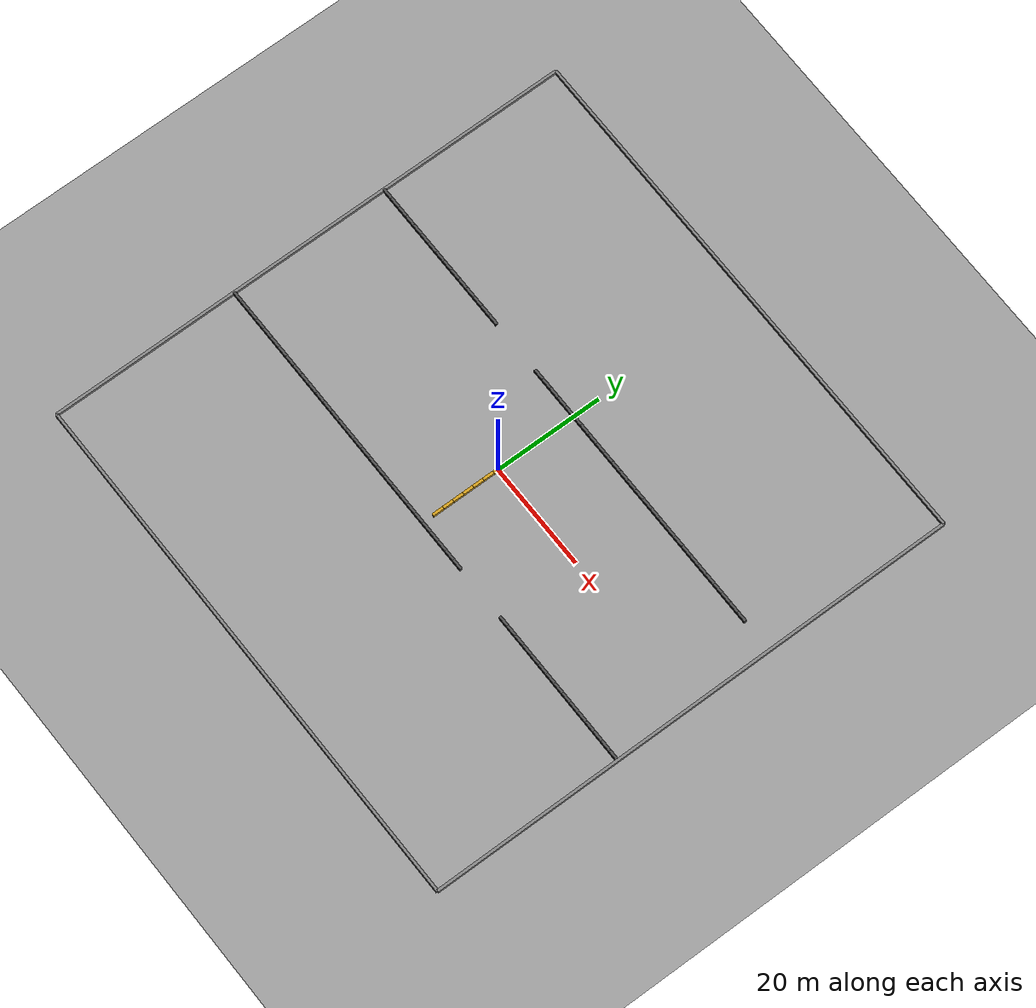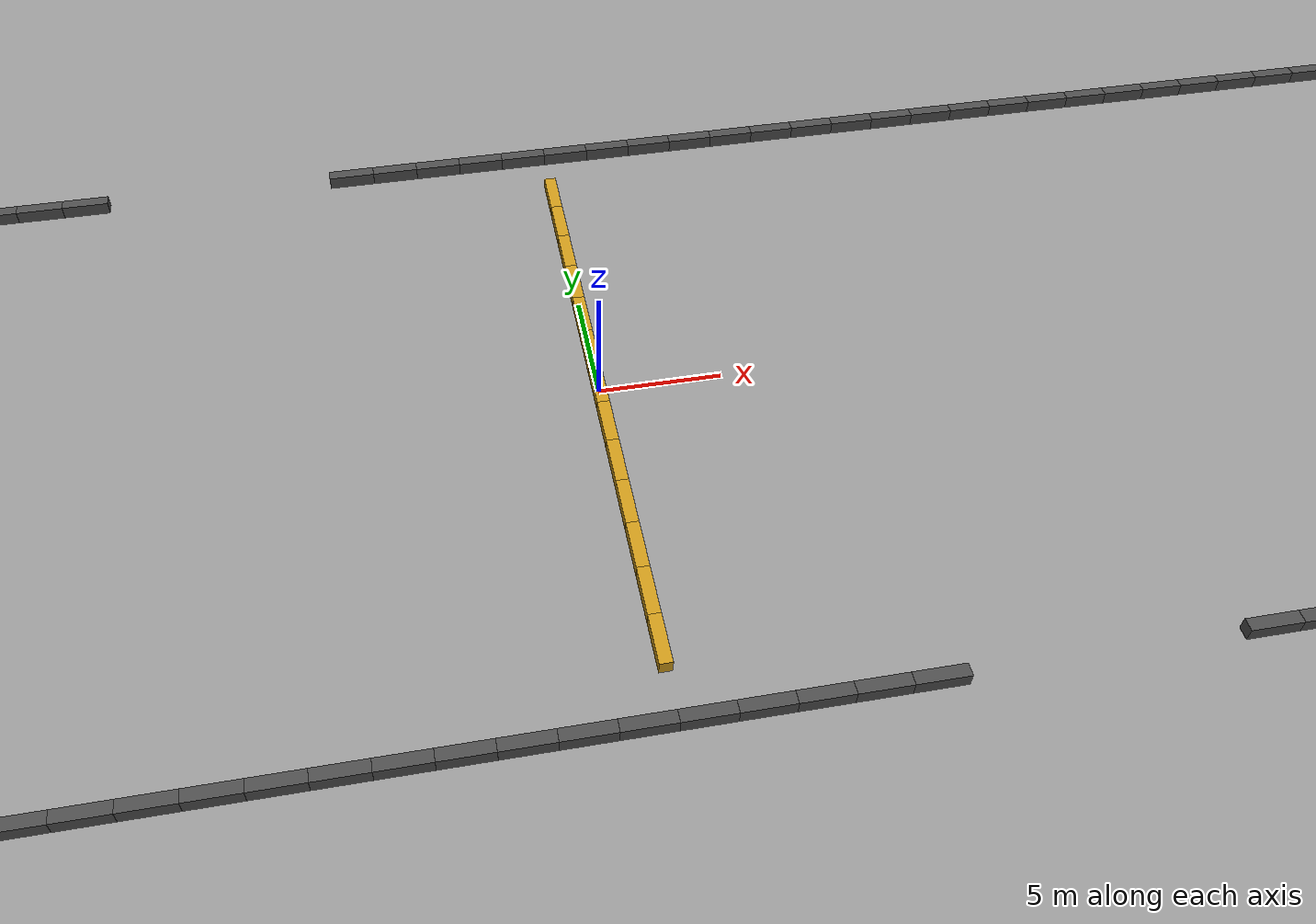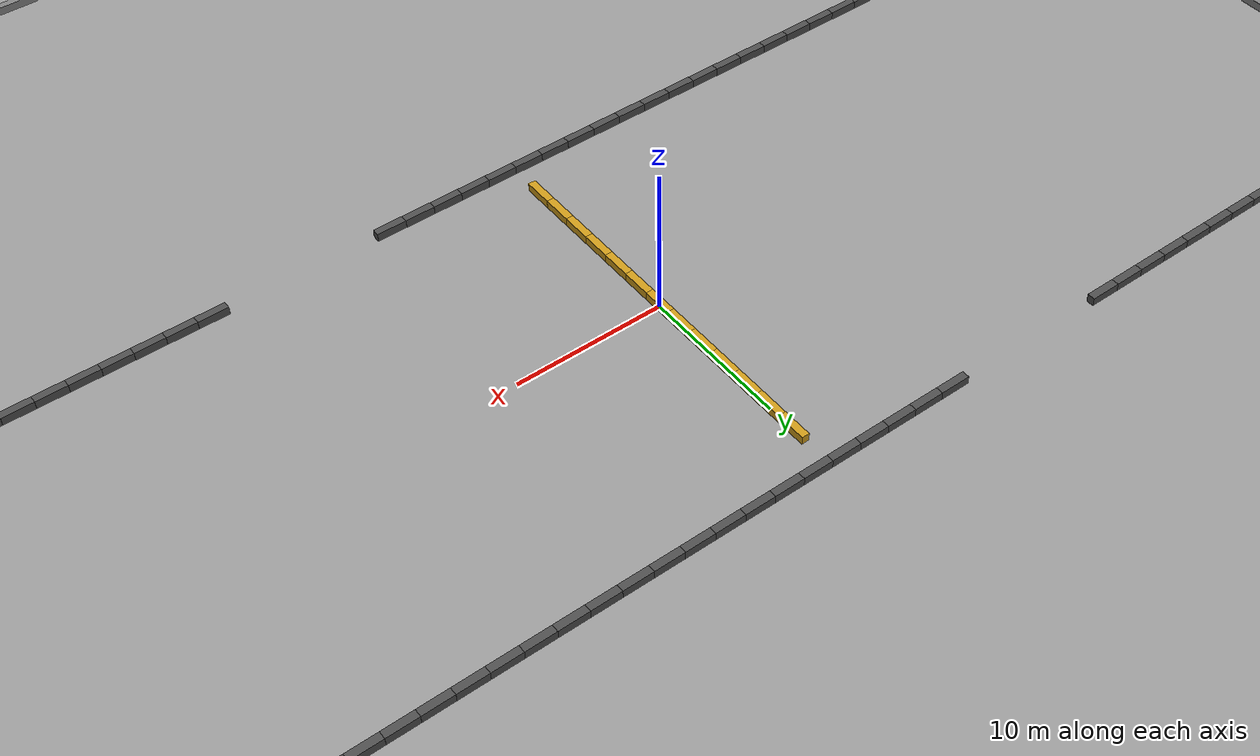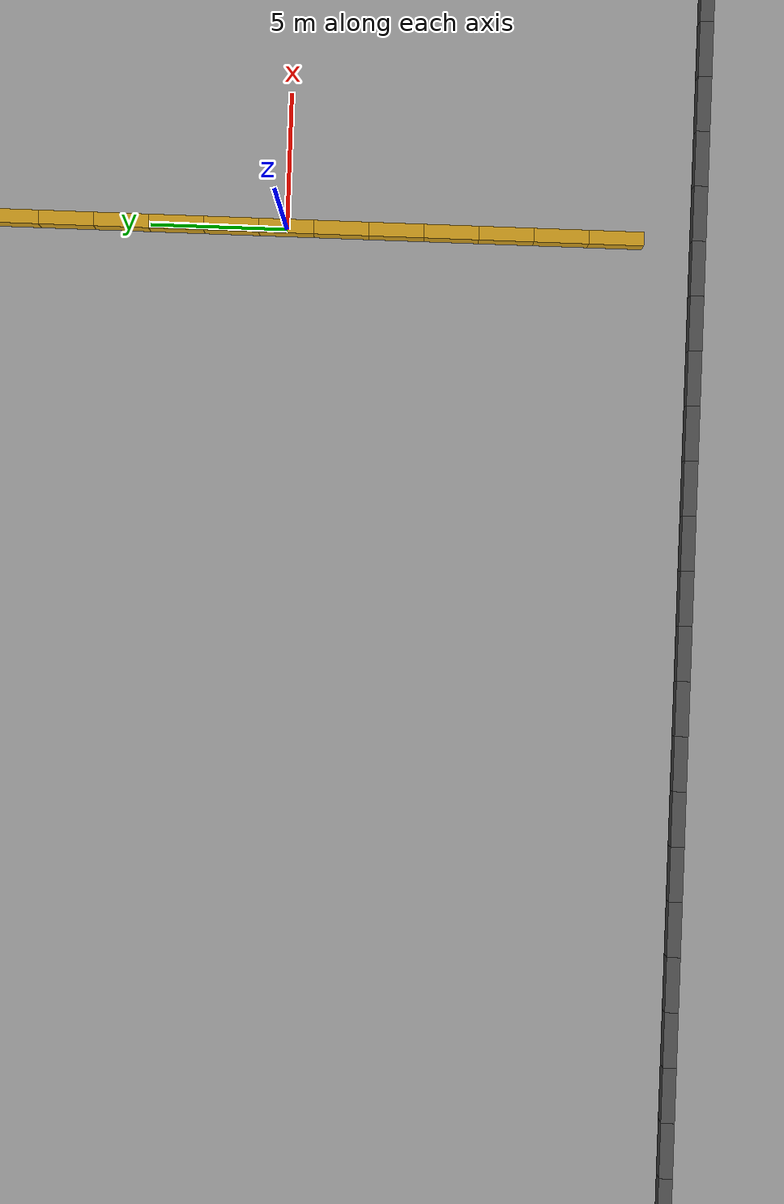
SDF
<sdf version="1.9">
 <world name="default">
  <physics type="ode">
   <max_step_size>0.01</max_step_size>
   <real_time_update_rate>60</real_time_update_rate>
  </physics>
  <model name="ground_plane">
   <static>true</static>
   <link name="link">
    <collision name="collision">
     <geometry><plane><normal>0 0 1</normal><size>100 100</size></plane></geometry>
     <surface><contact><collide_without_contact_bitmask>0x01</collide_without_contact_bitmask></contact></surface>
    </collision>
    <visual name="visual">
     <geometry><plane><normal>0 0 1</normal><size>100 100</size></plane></geometry>
     <material><ambient>0.6 0.6 0.6 1</ambient><diffuse>0.6 0.6 0.6 1</diffuse></material>
    </visual>
   </link>
  </model>
  <model name="topW_01">
   <pose>-49 15 0 0 0 0</pose>
   <link name="l">
    <gravity>false</gravity>
    <visual name="v">
     <geometry><box><size>2 0.5 1</size></box></geometry>
     <material><ambient>0.3 0.3 0.3 1</ambient></material>
    </visual>
   </link>
  </model>
  <model name="topW_02">
   <pose>-47 15 0 0 0 0</pose>
   <link name="l">
    <gravity>false</gravity>
    <visual name="v">
     <geometry><box><size>2 0.5 1</size></box></geometry>
     <material><ambient>0.3 0.3 0.3 1</ambient></material>
    </visual>
   </link>
  </model>
  <model name="topW_03">
   <pose>-45 15 0 0 0 0</pose>
   <link name="l">
    <gravity>false</gravity>
    <visual name="v">
     <geometry><box><size>2 0.5 1</size></box></geometry>
     <material><ambient>0.3 0.3 0.3 1</ambient></material>
    </visual>
   </link>
  </model>
  <model name="topW_04">
   <pose>-43 15 0 0 0 0</pose>
   <link name="l">
    <gravity>false</gravity>
    <visual name="v">
     <geometry><box><size>2 0.5 1</size></box></geometry>
     <material><ambient>0.3 0.3 0.3 1</ambient></material>
    </visual>
   </link>
  </model>
  <model name="topW_05">
   <pose>-41 15 0 0 0 0</pose>
   <link name="l">
    <gravity>false</gravity>
    <visual name="v">
     <geometry><box><size>2 0.5 1</size></box></geometry>
     <material><ambient>0.3 0.3 0.3 1</ambient></material>
    </visual>
   </link>
  </model>
  <model name="topW_06">
   <pose>-39 15 0 0 0 0</pose>
   <link name="l">
    <gravity>false</gravity>
    <visual name="v">
     <geometry><box><size>2 0.5 1</size></box></geometry>
     <material><ambient>0.3 0.3 0.3 1</ambient></material>
    </visual>
   </link>
  </model>
  <model name="topW_07">
   <pose>-37 15 0 0 0 0</pose>
   <link name="l">
    <gravity>false</gravity>
    <visual name="v">
     <geometry><box><size>2 0.5 1</size></box></geometry>
     <material><ambient>0.3 0.3 0.3 1</ambient></material>
    </visual>
   </link>
  </model>
  <model name="topW_08">
   <pose>-35 15 0 0 0 0</pose>
   <link name="l">
    <gravity>false</gravity>
    <visual name="v">
     <geometry><box><size>2 0.5 1</size></box></geometry>
     <material><ambient>0.3 0.3 0.3 1</ambient></material>
    </visual>
   </link>
  </model>
  <model name="topW_09">
   <pose>-33 15 0 0 0 0</pose>
   <link name="l">
    <gravity>false</gravity>
    <visual name="v">
     <geometry><box><size>2 0.5 1</size></box></geometry>
     <material><ambient>0.3 0.3 0.3 1</ambient></material>
    </visual>
   </link>
  </model>
  <model name="topW_10">
   <pose>-31 15 0 0 0 0</pose>
   <link name="l">
    <gravity>false</gravity>
    <visual name="v">
     <geometry><box><size>2 0.5 1</size></box></geometry>
     <material><ambient>0.3 0.3 0.3 1</ambient></material>
    </visual>
   </link>
  </model>
  <model name="topW_11">
   <pose>-29 15 0 0 0 0</pose>
   <link name="l">
    <gravity>false</gravity>
    <visual name="v">
     <geometry><box><size>2 0.5 1</size></box></geometry>
     <material><ambient>0.3 0.3 0.3 1</ambient></material>
    </visual>
   </link>
  </model>
  <model name="topW_12">
   <pose>-27 15 0 0 0 0</pose>
   <link name="l">
    <gravity>false</gravity>
    <visual name="v">
     <geometry><box><size>2 0.5 1</size></box></geometry>
     <material><ambient>0.3 0.3 0.3 1</ambient></material>
    </visual>
   </link>
  </model>
  <model name="topW_13">
   <pose>-25 15 0 0 0 0</pose>
   <link name="l">
    <gravity>false</gravity>
    <visual name="v">
     <geometry><box><size>2 0.5 1</size></box></geometry>
     <material><ambient>0.3 0.3 0.3 1</ambient></material>
    </visual>
   </link>
  </model>
  <model name="topW_14">
   <pose>-23 15 0 0 0 0</pose>
   <link name="l">
    <gravity>false</gravity>
    <visual name="v">
     <geometry><box><size>2 0.5 1</size></box></geometry>
     <material><ambient>0.3 0.3 0.3 1</ambient></material>
    </visual>
   </link>
  </model>
  <model name="topW_15">
   <pose>-21 15 0 0 0 0</pose>
   <link name="l">
    <gravity>false</gravity>
    <visual name="v">
     <geometry><box><size>2 0.5 1</size></box></geometry>
     <material><ambient>0.3 0.3 0.3 1</ambient></material>
    </visual>
   </link>
  </model>
  <model name="topC_01">
   <pose>-9 15 0 0 0 0</pose>
   <link name="l">
    <gravity>false</gravity>
    <visual name="v">
     <geometry><box><size>2 0.5 1</size></box></geometry>
     <material><ambient>0.3 0.3 0.3 1</ambient></material>
    </visual>
   </link>
  </model>
  <model name="topC_02">
   <pose>-7 15 0 0 0 0</pose>
   <link name="l">
    <gravity>false</gravity>
    <visual name="v">
     <geometry><box><size>2 0.5 1</size></box></geometry>
     <material><ambient>0.3 0.3 0.3 1</ambient></material>
    </visual>
   </link>
  </model>
  <model name="topC_03">
   <pose>-5 15 0 0 0 0</pose>
   <link name="l">
    <gravity>false</gravity>
    <visual name="v">
     <geometry><box><size>2 0.5 1</size></box></geometry>
     <material><ambient>0.3 0.3 0.3 1</ambient></material>
    </visual>
   </link>
  </model>
  <model name="topC_04">
   <pose>-3 15 0 0 0 0</pose>
   <link name="l">
    <gravity>false</gravity>
    <visual name="v">
     <geometry><box><size>2 0.5 1</size></box></geometry>
     <material><ambient>0.3 0.3 0.3 1</ambient></material>
    </visual>
   </link>
  </model>
  <model name="topC_05">
   <pose>-1 15 0 0 0 0</pose>
   <link name="l">
    <gravity>false</gravity>
    <visual name="v">
     <geometry><box><size>2 0.5 1</size></box></geometry>
     <material><ambient>0.3 0.3 0.3 1</ambient></material>
    </visual>
   </link>
  </model>
  <model name="topC_06">
   <pose>1 15 0 0 0 0</pose>
   <link name="l">
    <gravity>false</gravity>
    <visual name="v">
     <geometry><box><size>2 0.5 1</size></box></geometry>
     <material><ambient>0.3 0.3 0.3 1</ambient></material>
    </visual>
   </link>
  </model>
  <model name="topC_07">
   <pose>3 15 0 0 0 0</pose>
   <link name="l">
    <gravity>false</gravity>
    <visual name="v">
     <geometry><box><size>2 0.5 1</size></box></geometry>
     <material><ambient>0.3 0.3 0.3 1</ambient></material>
    </visual>
   </link>
  </model>
  <model name="topC_08">
   <pose>5 15 0 0 0 0</pose>
   <link name="l">
    <gravity>false</gravity>
    <visual name="v">
     <geometry><box><size>2 0.5 1</size></box></geometry>
     <material><ambient>0.3 0.3 0.3 1</ambient></material>
    </visual>
   </link>
  </model>
  <model name="topC_09">
   <pose>7 15 0 0 0 0</pose>
   <link name="l">
    <gravity>false</gravity>
    <visual name="v">
     <geometry><box><size>2 0.5 1</size></box></geometry>
     <material><ambient>0.3 0.3 0.3 1</ambient></material>
    </visual>
   </link>
  </model>
  <model name="topC_10">
   <pose>9 15 0 0 0 0</pose>
   <link name="l">
    <gravity>false</gravity>
    <visual name="v">
     <geometry><box><size>2 0.5 1</size></box></geometry>
     <material><ambient>0.3 0.3 0.3 1</ambient></material>
    </visual>
   </link>
  </model>
  <model name="topE_01">
   <pose>21 15 0 0 0 0</pose>
   <link name="l">
    <gravity>false</gravity>
    <visual name="v">
     <geometry><box><size>2 0.5 1</size></box></geometry>
     <material><ambient>0.3 0.3 0.3 1</ambient></material>
    </visual>
   </link>
  </model>
  <model name="topE_02">
   <pose>23 15 0 0 0 0</pose>
   <link name="l">
    <gravity>false</gravity>
    <visual name="v">
     <geometry><box><size>2 0.5 1</size></box></geometry>
     <material><ambient>0.3 0.3 0.3 1</ambient></material>
    </visual>
   </link>
  </model>
  <model name="topE_03">
   <pose>25 15 0 0 0 0</pose>
   <link name="l">
    <gravity>false</gravity>
    <visual name="v">
     <geometry><box><size>2 0.5 1</size></box></geometry>
     <material><ambient>0.3 0.3 0.3 1</ambient></material>
    </visual>
   </link>
  </model>
  <model name="topE_04">
   <pose>27 15 0 0 0 0</pose>
   <link name="l">
    <gravity>false</gravity>
    <visual name="v">
     <geometry><box><size>2 0.5 1</size></box></geometry>
     <material><ambient>0.3 0.3 0.3 1</ambient></material>
    </visual>
   </link>
  </model>
  <model name="topE_05">
   <pose>29 15 0 0 0 0</pose>
   <link name="l">
    <gravity>false</gravity>
    <visual name="v">
     <geometry><box><size>2 0.5 1</size></box></geometry>
     <material><ambient>0.3 0.3 0.3 1</ambient></material>
    </visual>
   </link>
  </model>
  <model name="topE_06">
   <pose>31 15 0 0 0 0</pose>
   <link name="l">
    <gravity>false</gravity>
    <visual name="v">
     <geometry><box><size>2 0.5 1</size></box></geometry>
     <material><ambient>0.3 0.3 0.3 1</ambient></material>
    </visual>
   </link>
  </model>
  <model name="topE_07">
   <pose>33 15 0 0 0 0</pose>
   <link name="l">
    <gravity>false</gravity>
    <visual name="v">
     <geometry><box><size>2 0.5 1</size></box></geometry>
     <material><ambient>0.3 0.3 0.3 1</ambient></material>
    </visual>
   </link>
  </model>
  <model name="topE_08">
   <pose>35 15 0 0 0 0</pose>
   <link name="l">
    <gravity>false</gravity>
    <visual name="v">
     <geometry><box><size>2 0.5 1</size></box></geometry>
     <material><ambient>0.3 0.3 0.3 1</ambient></material>
    </visual>
   </link>
  </model>
  <model name="topE_09">
   <pose>37 15 0 0 0 0</pose>
   <link name="l">
    <gravity>false</gravity>
    <visual name="v">
     <geometry><box><size>2 0.5 1</size></box></geometry>
     <material><ambient>0.3 0.3 0.3 1</ambient></material>
    </visual>
   </link>
  </model>
  <model name="topE_10">
   <pose>39 15 0 0 0 0</pose>
   <link name="l">
    <gravity>false</gravity>
    <visual name="v">
     <geometry><box><size>2 0.5 1</size></box></geometry>
     <material><ambient>0.3 0.3 0.3 1</ambient></material>
    </visual>
   </link>
  </model>
  <model name="topE_11">
   <pose>41 15 0 0 0 0</pose>
   <link name="l">
    <gravity>false</gravity>
    <visual name="v">
     <geometry><box><size>2 0.5 1</size></box></geometry>
     <material><ambient>0.3 0.3 0.3 1</ambient></material>
    </visual>
   </link>
  </model>
  <model name="topE_12">
   <pose>43 15 0 0 0 0</pose>
   <link name="l">
    <gravity>false</gravity>
    <visual name="v">
     <geometry><box><size>2 0.5 1</size></box></geometry>
     <material><ambient>0.3 0.3 0.3 1</ambient></material>
    </visual>
   </link>
  </model>
  <model name="botW_01">
   <pose>-49 -15 0 0 0 0</pose>
   <link name="l">
    <gravity>false</gravity>
    <visual name="v">
     <geometry><box><size>2 0.5 1</size></box></geometry>
     <material><ambient>0.3 0.3 0.3 1</ambient></material>
    </visual>
   </link>
  </model>
  <model name="botW_02">
   <pose>-47 -15 0 0 0 0</pose>
   <link name="l">
    <gravity>false</gravity>
    <visual name="v">
     <geometry><box><size>2 0.5 1</size></box></geometry>
     <material><ambient>0.3 0.3 0.3 1</ambient></material>
    </visual>
   </link>
  </model>
  <model name="botW_03">
   <pose>-45 -15 0 0 0 0</pose>
   <link name="l">
    <gravity>false</gravity>
    <visual name="v">
     <geometry><box><size>2 0.5 1</size></box></geometry>
     <material><ambient>0.3 0.3 0.3 1</ambient></material>
    </visual>
   </link>
  </model>
  <model name="botW_04">
   <pose>-43 -15 0 0 0 0</pose>
   <link name="l">
    <gravity>false</gravity>
    <visual name="v">
     <geometry><box><size>2 0.5 1</size></box></geometry>
     <material><ambient>0.3 0.3 0.3 1</ambient></material>
    </visual>
   </link>
  </model>
  <model name="botW_05">
   <pose>-41 -15 0 0 0 0</pose>
   <link name="l">
    <gravity>false</gravity>
    <visual name="v">
     <geometry><box><size>2 0.5 1</size></box></geometry>
     <material><ambient>0.3 0.3 0.3 1</ambient></material>
    </visual>
   </link>
  </model>
  <model name="botW_06">
   <pose>-39 -15 0 0 0 0</pose>
   <link name="l">
    <gravity>false</gravity>
    <visual name="v">
     <geometry><box><size>2 0.5 1</size></box></geometry>
     <material><ambient>0.3 0.3 0.3 1</ambient></material>
    </visual>
   </link>
  </model>
  <model name="botW_07">
   <pose>-37 -15 0 0 0 0</pose>
   <link name="l">
    <gravity>false</gravity>
    <visual name="v">
     <geometry><box><size>2 0.5 1</size></box></geometry>
     <material><ambient>0.3 0.3 0.3 1</ambient></material>
    </visual>
   </link>
  </model>
  <model name="botW_08">
   <pose>-35 -15 0 0 0 0</pose>
   <link name="l">
    <gravity>false</gravity>
    <visual name="v">
     <geometry><box><size>2 0.5 1</size></box></geometry>
     <material><ambient>0.3 0.3 0.3 1</ambient></material>
    </visual>
   </link>
  </model>
  <model name="botW_09">
   <pose>-33 -15 0 0 0 0</pose>
   <link name="l">
    <gravity>false</gravity>
    <visual name="v">
     <geometry><box><size>2 0.5 1</size></box></geometry>
     <material><ambient>0.3 0.3 0.3 1</ambient></material>
    </visual>
   </link>
  </model>
  <model name="botW_10">
   <pose>-31 -15 0 0 0 0</pose>
   <link name="l">
    <gravity>false</gravity>
    <visual name="v">
     <geometry><box><size>2 0.5 1</size></box></geometry>
     <material><ambient>0.3 0.3 0.3 1</ambient></material>
    </visual>
   </link>
  </model>
  <model name="botW_11">
   <pose>-29 -15 0 0 0 0</pose>
   <link name="l">
    <gravity>false</gravity>
    <visual name="v">
     <geometry><box><size>2 0.5 1</size></box></geometry>
     <material><ambient>0.3 0.3 0.3 1</ambient></material>
    </visual>
   </link>
  </model>
  <model name="botW_12">
   <pose>-27 -15 0 0 0 0</pose>
   <link name="l">
    <gravity>false</gravity>
    <visual name="v">
     <geometry><box><size>2 0.5 1</size></box></geometry>
     <material><ambient>0.3 0.3 0.3 1</ambient></material>
    </visual>
   </link>
  </model>
  <model name="botW_13">
   <pose>-25 -15 0 0 0 0</pose>
   <link name="l">
    <gravity>false</gravity>
    <visual name="v">
     <geometry><box><size>2 0.5 1</size></box></geometry>
     <material><ambient>0.3 0.3 0.3 1</ambient></material>
    </visual>
   </link>
  </model>
  <model name="botW_14">
   <pose>-23 -15 0 0 0 0</pose>
   <link name="l">
    <gravity>false</gravity>
    <visual name="v">
     <geometry><box><size>2 0.5 1</size></box></geometry>
     <material><ambient>0.3 0.3 0.3 1</ambient></material>
    </visual>
   </link>
  </model>
  <model name="botW_15">
   <pose>-21 -15 0 0 0 0</pose>
   <link name="l">
    <gravity>false</gravity>
    <visual name="v">
     <geometry><box><size>2 0.5 1</size></box></geometry>
     <material><ambient>0.3 0.3 0.3 1</ambient></material>
    </visual>
   </link>
  </model>
  <model name="botC_01">
   <pose>-9 -15 0 0 0 0</pose>
   <link name="l">
    <gravity>false</gravity>
    <visual name="v">
     <geometry><box><size>2 0.5 1</size></box></geometry>
     <material><ambient>0.3 0.3 0.3 1</ambient></material>
    </visual>
   </link>
  </model>
  <model name="botC_02">
   <pose>-7 -15 0 0 0 0</pose>
   <link name="l">
    <gravity>false</gravity>
    <visual name="v">
     <geometry><box><size>2 0.5 1</size></box></geometry>
     <material><ambient>0.3 0.3 0.3 1</ambient></material>
    </visual>
   </link>
  </model>
  <model name="botC_03">
   <pose>-5 -15 0 0 0 0</pose>
   <link name="l">
    <gravity>false</gravity>
    <visual name="v">
     <geometry><box><size>2 0.5 1</size></box></geometry>
     <material><ambient>0.3 0.3 0.3 1</ambient></material>
    </visual>
   </link>
  </model>
  <model name="botC_04">
   <pose>-3 -15 0 0 0 0</pose>
   <link name="l">
    <gravity>false</gravity>
    <visual name="v">
     <geometry><box><size>2 0.5 1</size></box></geometry>
     <material><ambient>0.3 0.3 0.3 1</ambient></material>
    </visual>
   </link>
  </model>
  <model name="botC_05">
   <pose>-1 -15 0 0 0 0</pose>
   <link name="l">
    <gravity>false</gravity>
    <visual name="v">
     <geometry><box><size>2 0.5 1</size></box></geometry>
     <material><ambient>0.3 0.3 0.3 1</ambient></material>
    </visual>
   </link>
  </model>
  <model name="botC_06">
   <pose>1 -15 0 0 0 0</pose>
   <link name="l">
    <gravity>false</gravity>
    <visual name="v">
     <geometry><box><size>2 0.5 1</size></box></geometry>
     <material><ambient>0.3 0.3 0.3 1</ambient></material>
    </visual>
   </link>
  </model>
  <model name="botC_07">
   <pose>3 -15 0 0 0 0</pose>
   <link name="l">
    <gravity>false</gravity>
    <visual name="v">
     <geometry><box><size>2 0.5 1</size></box></geometry>
     <material><ambient>0.3 0.3 0.3 1</ambient></material>
    </visual>
   </link>
  </model>
  <model name="botC_08">
   <pose>5 -15 0 0 0 0</pose>
   <link name="l">
    <gravity>false</gravity>
    <visual name="v">
     <geometry><box><size>2 0.5 1</size></box></geometry>
     <material><ambient>0.3 0.3 0.3 1</ambient></material>
    </visual>
   </link>
  </model>
  <model name="botC_09">
   <pose>7 -15 0 0 0 0</pose>
   <link name="l">
    <gravity>false</gravity>
    <visual name="v">
     <geometry><box><size>2 0.5 1</size></box></geometry>
     <material><ambient>0.3 0.3 0.3 1</ambient></material>
    </visual>
   </link>
  </model>
  <model name="botC_10">
   <pose>9 -15 0 0 0 0</pose>
   <link name="l">
    <gravity>false</gravity>
    <visual name="v">
     <geometry><box><size>2 0.5 1</size></box></geometry>
     <material><ambient>0.3 0.3 0.3 1</ambient></material>
    </visual>
   </link>
  </model>
  <model name="botE_01">
   <pose>21 -15 0 0 0 0</pose>
   <link name="l">
    <gravity>false</gravity>
    <visual name="v">
     <geometry><box><size>2 0.5 1</size></box></geometry>
     <material><ambient>0.3 0.3 0.3 1</ambient></material>
    </visual>
   </link>
  </model>
  <model name="botE_02">
   <pose>23 -15 0 0 0 0</pose>
   <link name="l">
    <gravity>false</gravity>
    <visual name="v">
     <geometry><box><size>2 0.5 1</size></box></geometry>
     <material><ambient>0.3 0.3 0.3 1</ambient></material>
    </visual>
   </link>
  </model>
  <model name="botE_03">
   <pose>25 -15 0 0 0 0</pose>
   <link name="l">
    <gravity>false</gravity>
    <visual name="v">
     <geometry><box><size>2 0.5 1</size></box></geometry>
     <material><ambient>0.3 0.3 0.3 1</ambient></material>
    </visual>
   </link>
  </model>
  <model name="botE_04">
   <pose>27 -15 0 0 0 0</pose>
   <link name="l">
    <gravity>false</gravity>
    <visual name="v">
     <geometry><box><size>2 0.5 1</size></box></geometry>
     <material><ambient>0.3 0.3 0.3 1</ambient></material>
    </visual>
   </link>
  </model>
  <model name="botE_05">
   <pose>29 -15 0 0 0 0</pose>
   <link name="l">
    <gravity>false</gravity>
    <visual name="v">
     <geometry><box><size>2 0.5 1</size></box></geometry>
     <material><ambient>0.3 0.3 0.3 1</ambient></material>
    </visual>
   </link>
  </model>
  <model name="botE_06">
   <pose>31 -15 0 0 0 0</pose>
   <link name="l">
    <gravity>false</gravity>
    <visual name="v">
     <geometry><box><size>2 0.5 1</size></box></geometry>
     <material><ambient>0.3 0.3 0.3 1</ambient></material>
    </visual>
   </link>
  </model>
  <model name="botE_07">
   <pose>33 -15 0 0 0 0</pose>
   <link name="l">
    <gravity>false</gravity>
    <visual name="v">
     <geometry><box><size>2 0.5 1</size></box></geometry>
     <material><ambient>0.3 0.3 0.3 1</ambient></material>
    </visual>
   </link>
  </model>
  <model name="botE_08">
   <pose>35 -15 0 0 0 0</pose>
   <link name="l">
    <gravity>false</gravity>
    <visual name="v">
     <geometry><box><size>2 0.5 1</size></box></geometry>
     <material><ambient>0.3 0.3 0.3 1</ambient></material>
    </visual>
   </link>
  </model>
  <model name="botE_09">
   <pose>37 -15 0 0 0 0</pose>
   <link name="l">
    <gravity>false</gravity>
    <visual name="v">
     <geometry><box><size>2 0.5 1</size></box></geometry>
     <material><ambient>0.3 0.3 0.3 1</ambient></material>
    </visual>
   </link>
  </model>
  <model name="botE_10">
   <pose>39 -15 0 0 0 0</pose>
   <link name="l">
    <gravity>false</gravity>
    <visual name="v">
     <geometry><box><size>2 0.5 1</size></box></geometry>
     <material><ambient>0.3 0.3 0.3 1</ambient></material>
    </visual>
   </link>
  </model>
  <model name="botE_11">
   <pose>41 -15 0 0 0 0</pose>
   <link name="l">
    <gravity>false</gravity>
    <visual name="v">
     <geometry><box><size>2 0.5 1</size></box></geometry>
     <material><ambient>0.3 0.3 0.3 1</ambient></material>
    </visual>
   </link>
  </model>
  <model name="botE_12">
   <pose>43 -15 0 0 0 0</pose>
   <link name="l">
    <gravity>false</gravity>
    <visual name="v">
     <geometry><box><size>2 0.5 1</size></box></geometry>
     <material><ambient>0.3 0.3 0.3 1</ambient></material>
    </visual>
   </link>
  </model>
  <model name="botE_13">
   <pose>45 -15 0 0 0 0</pose>
   <link name="l">
    <gravity>false</gravity>
    <visual name="v">
     <geometry><box><size>2 0.5 1</size></box></geometry>
     <material><ambient>0.3 0.3 0.3 1</ambient></material>
    </visual>
   </link>
  </model>
  <model name="botE_14">
   <pose>47 -15 0 0 0 0</pose>
   <link name="l">
    <gravity>false</gravity>
    <visual name="v">
     <geometry><box><size>2 0.5 1</size></box></geometry>
     <material><ambient>0.3 0.3 0.3 1</ambient></material>
    </visual>
   </link>
  </model>
  <model name="botE_15">
   <pose>49 -15 0 0 0 0</pose>
   <link name="l">
    <gravity>false</gravity>
    <visual name="v">
     <geometry><box><size>2 0.5 1</size></box></geometry>
     <material><ambient>0.3 0.3 0.3 1</ambient></material>
    </visual>
   </link>
  </model>
  <model name="div_01">
   <pose>0 -12 0 0 0 0</pose>
   <link name="l">
    <gravity>false</gravity>
    <visual name="v">
     <geometry><box><size>0.5 2 1</size></box></geometry>
     <material><ambient>0.8 0.6 0.1 1</ambient></material>
    </visual>
   </link>
  </model>
  <model name="div_02">
   <pose>0 -10 0 0 0 0</pose>
   <link name="l">
    <gravity>false</gravity>
    <visual name="v">
     <geometry><box><size>0.5 2 1</size></box></geometry>
     <material><ambient>0.8 0.6 0.1 1</ambient></material>
    </visual>
   </link>
  </model>
  <model name="div_03">
   <pose>0 -8 0 0 0 0</pose>
   <link name="l">
    <gravity>false</gravity>
    <visual name="v">
     <geometry><box><size>0.5 2 1</size></box></geometry>
     <material><ambient>0.8 0.6 0.1 1</ambient></material>
    </visual>
   </link>
  </model>
  <model name="div_04">
   <pose>0 -6 0 0 0 0</pose>
   <link name="l">
    <gravity>false</gravity>
    <visual name="v">
     <geometry><box><size>0.5 2 1</size></box></geometry>
     <material><ambient>0.8 0.6 0.1 1</ambient></material>
    </visual>
   </link>
  </model>
  <model name="div_05">
   <pose>0 -4 0 0 0 0</pose>
   <link name="l">
    <gravity>false</gravity>
    <visual name="v">
     <geometry><box><size>0.5 2 1</size></box></geometry>
     <material><ambient>0.8 0.6 0.1 1</ambient></material>
    </visual>
   </link>
  </model>
  <model name="div_06">
   <pose>0 -2 0 0 0 0</pose>
   <link name="l">
    <gravity>false</gravity>
    <visual name="v">
     <geometry><box><size>0.5 2 1</size></box></geometry>
     <material><ambient>0.8 0.6 0.1 1</ambient></material>
    </visual>
   </link>
  </model>
  <model name="div_07">
   <link name="l">
    <gravity>false</gravity>
    <visual name="v">
     <geometry><box><size>0.5 2 1</size></box></geometry>
     <material><ambient>0.8 0.6 0.1 1</ambient></material>
    </visual>
   </link>
  </model>
  <model name="div_08">
   <pose>0 2 0 0 0 0</pose>
   <link name="l">
    <gravity>false</gravity>
    <visual name="v">
     <geometry><box><size>0.5 2 1</size></box></geometry>
     <material><ambient>0.8 0.6 0.1 1</ambient></material>
    </visual>
   </link>
  </model>
  <model name="div_09">
   <pose>0 4 0 0 0 0</pose>
   <link name="l">
    <gravity>false</gravity>
    <visual name="v">
     <geometry><box><size>0.5 2 1</size></box></geometry>
     <material><ambient>0.8 0.6 0.1 1</ambient></material>
    </visual>
   </link>
  </model>
  <model name="div_10">
   <pose>0 6 0 0 0 0</pose>
   <link name="l">
    <gravity>false</gravity>
    <visual name="v">
     <geometry><box><size>0.5 2 1</size></box></geometry>
     <material><ambient>0.8 0.6 0.1 1</ambient></material>
    </visual>
   </link>
  </model>
  <model name="div_11">
   <pose>0 8 0 0 0 0</pose>
   <link name="l">
    <gravity>false</gravity>
    <visual name="v">
     <geometry><box><size>0.5 2 1</size></box></geometry>
     <material><ambient>0.8 0.6 0.1 1</ambient></material>
    </visual>
   </link>
  </model>
  <model name="div_12">
   <pose>0 10 0 0 0 0</pose>
   <link name="l">
    <gravity>false</gravity>
    <visual name="v">
     <geometry><box><size>0.5 2 1</size></box></geometry>
     <material><ambient>0.8 0.6 0.1 1</ambient></material>
    </visual>
   </link>
  </model>
  <model name="div_13">
   <pose>0 12 0 0 0 0</pose>
   <link name="l">
    <gravity>false</gravity>
    <visual name="v">
     <geometry><box><size>0.5 2 1</size></box></geometry>
     <material><ambient>0.8 0.6 0.1 1</ambient></material>
    </visual>
   </link>
  </model>
  <model name="gap_top_e_01">
   <pose>11 15 0 0 0 0</pose>
   <link name="l">
    <gravity>false</gravity>
    <visual name="v">
     <geometry><box><size>2 0.5 1</size></box></geometry>
     <material><ambient>0.3 0.3 0.3 1</ambient></material>
    </visual>
   </link>
  </model>
  <model name="gap_top_e_02">
   <pose>13 15 0 0 0 0</pose>
   <link name="l">
    <gravity>false</gravity>
    <visual name="v">
     <geometry><box><size>2 0.5 1</size></box></geometry>
     <material><ambient>0.3 0.3 0.3 1</ambient></material>
    </visual>
   </link>
  </model>
  <model name="gap_top_e_03">
   <pose>15 15 0 0 0 0</pose>
   <link name="l">
    <gravity>false</gravity>
    <visual name="v">
     <geometry><box><size>2 0.5 1</size></box></geometry>
     <material><ambient>0.3 0.3 0.3 1</ambient></material>
    </visual>
   </link>
  </model>
  <model name="gap_top_e_04">
   <pose>17 15 0 0 0 0</pose>
   <link name="l">
    <gravity>false</gravity>
    <visual name="v">
     <geometry><box><size>2 0.5 1</size></box></geometry>
     <material><ambient>0.3 0.3 0.3 1</ambient></material>
    </visual>
   </link>
  </model>
  <model name="gap_top_e_05">
   <pose>19 15 0 0 0 0</pose>
   <link name="l">
    <gravity>false</gravity>
    <visual name="v">
     <geometry><box><size>2 0.5 1</size></box></geometry>
     <material><ambient>0.3 0.3 0.3 1</ambient></material>
    </visual>
   </link>
  </model>
  <model name="gap_bot_w_01">
   <pose>-19 -15 0 0 0 0</pose>
   <link name="l">
    <gravity>false</gravity>
    <visual name="v">
     <geometry><box><size>2 0.5 1</size></box></geometry>
     <material><ambient>0.3 0.3 0.3 1</ambient></material>
    </visual>
   </link>
  </model>
  <model name="gap_bot_w_02">
   <pose>-17 -15 0 0 0 0</pose>
   <link name="l">
    <gravity>false</gravity>
    <visual name="v">
     <geometry><box><size>2 0.5 1</size></box></geometry>
     <material><ambient>0.3 0.3 0.3 1</ambient></material>
    </visual>
   </link>
  </model>
  <model name="gap_bot_w_03">
   <pose>-15 -15 0 0 0 0</pose>
   <link name="l">
    <gravity>false</gravity>
    <visual name="v">
     <geometry><box><size>2 0.5 1</size></box></geometry>
     <material><ambient>0.3 0.3 0.3 1</ambient></material>
    </visual>
   </link>
  </model>
  <model name="gap_bot_w_04">
   <pose>-13 -15 0 0 0 0</pose>
   <link name="l">
    <gravity>false</gravity>
    <visual name="v">
     <geometry><box><size>2 0.5 1</size></box></geometry>
     <material><ambient>0.3 0.3 0.3 1</ambient></material>
    </visual>
   </link>
  </model>
  <model name="gap_bot_w_05">
   <pose>-11 -15 0 0 0 0</pose>
   <link name="l">
    <gravity>false</gravity>
    <visual name="v">
     <geometry><box><size>2 0.5 1</size></box></geometry>
     <material><ambient>0.3 0.3 0.3 1</ambient></material>
    </visual>
   </link>
  </model>
  <model name="boundary_left_visible">
   <pose>-50 0 0 0 0 0</pose>
   <link name="link">
    <gravity>false</gravity>
    <visual name="visual">
     <geometry><box><size>0.5 100 1</size></box></geometry>
     <material><ambient>0.5 0.5 0.5 1</ambient></material>
    </visual>
   </link>
  </model>
  <model name="boundary_right_visible">
   <pose>50 0 0 0 0 0</pose>
   <link name="link">
    <gravity>false</gravity>
    <visual name="visual">
     <geometry><box><size>0.5 100 1</size></box></geometry>
     <material><ambient>0.5 0.5 0.5 1</ambient></material>
    </visual>
   </link>
  </model>
  <model name="boundary_bottom_visible">
   <pose>0 -50 0 0 0 0</pose>
   <link name="link">
    <gravity>false</gravity>
    <visual name="visual">
     <geometry><box><size>100 0.5 1</size></box></geometry>
     <material><ambient>0.5 0.5 0.5 1</ambient></material>
    </visual>
   </link>
  </model>
  <model name="boundary_top_visible">
   <pose>0 50 0 0 0 0</pose>
   <link name="link">
    <gravity>false</gravity>
    <visual name="visual">
     <geometry><box><size>100 0.5 1</size></box></geometry>
     <material><ambient>0.5 0.5 0.5 1</ambient></material>
    </visual>
   </link>
  </model>
 </world>
</sdf>
